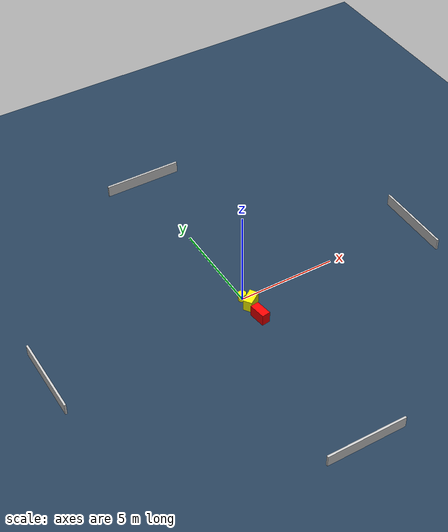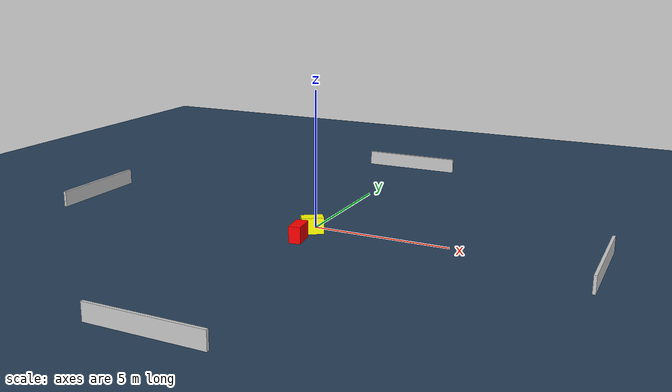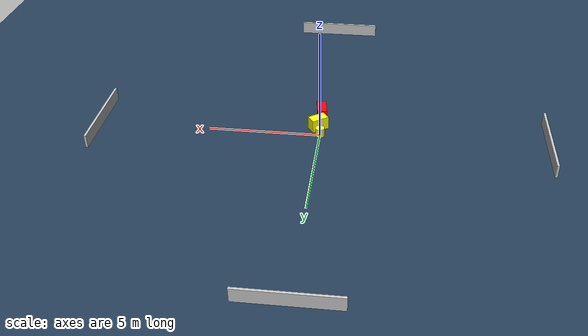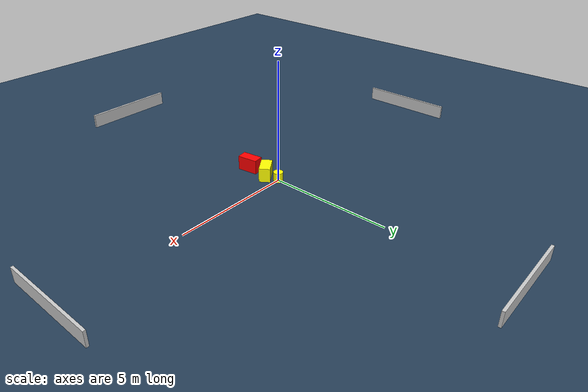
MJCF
<?xml version="1.0" ?>
<mujoco model="generated_environment">
  <option timestep="0.01" integrator="RK4" cone="elliptic"/>
  <default>
    <geom density="1"/>
  </default>
  <asset>
    <texture builtin="gradient" height="3072" name="skybox" rgb1="0.3 0.5 0.7" rgb2="0 0 0" type="skybox" width="512"/>
    <texture builtin="checker" height="300" name="groundplane" rgb1="0.2 0.3 0.4" rgb2="0.1 0.2 0.3" type="2d" width="300"/>
    <material name="groundplane" reflectance="0.2" texrepeat="5 5" texture="groundplane"/>
  </asset>
  <worldbody>
    <light dir="0 0 -1" directional="true" pos="0 0 1.5"/>
    <geom condim="3" friction="0.5 0.005 0.001" material="groundplane" name="floor" pos="0 0 0" size="0 0 0.05" type="plane"/>
    <body name="walls">
      <geom name="wall_1" condim="4" pos="-10.0 0.0 0.3" rgba="0.800000011920929 0.800000011920929 0.800000011920929 1.0" size="0.05 2.0 0.3" type="box"/>
      <geom name="wall_2" condim="4" pos="10.0 0.0 0.3" rgba="0.800000011920929 0.800000011920929 0.800000011920929 1.0" size="0.05 2.0 0.3" type="box"/>
      <geom name="wall_3" condim="4" pos="0.0 -10.0 0.3" rgba="0.800000011920929 0.800000011920929 0.800000011920929 1.0" size="2.0 0.05 0.3" type="box"/>
      <geom name="wall_4" condim="4" pos="0.0 10.0 0.3" rgba="0.800000011920929 0.800000011920929 0.800000011920929 1.0" size="2.0 0.05 0.3" type="box"/>
    </body>
    <body name="robot">
      <joint name="joint_x" type="slide" pos="0 0 0" axis="1 0 0"/>
      <joint name="joint_y" type="slide" pos="0 0 0" axis="0 1 0"/>
      <geom name="robot" type="cylinder" pos="0.0 0.0 0.2" size="0.2 0.2 0.0" mass="5.0" friction="1.0 0.005 0.0001" condim="4" rgba="1.0 1.0 0.0 1.0"/>
    </body>
    <body name="obstacle_1_movable">
      <geom name="obstacle_1_movable" condim="4" pos="0.13473115970455418 -0.560157911058903 0.3" euler="0 0 304.57239464172187" friction="0.0 0.005 0.001" rgba="1.0 1.0 0.0 1.0" size="0.22600940831335625 0.39848772172459856 0.3" type="box" mass="0.1"/>
      <joint type="free"/>
    </body>
    <body name="obstacle_2_static">
      <geom name="obstacle_2_static" condim="4" pos="0.07549217065671762 -1.4935990755618684 0.3" euler="0 0 278.27306470385577" friction="0.0 0.005 0.001" rgba="1.0 0.0 0.0 1.0" size="0.4268403188893953 0.21458592918935404 0.3" type="box"/>
    </body>
  </worldbody>
  <actuator>
    <motor name="actuator_x" joint="joint_x" gear="1" ctrlrange="-1 1"/>
    <motor name="actuator_y" joint="joint_y" gear="1" ctrlrange="-1 1"/>
  </actuator>
</mujoco>
